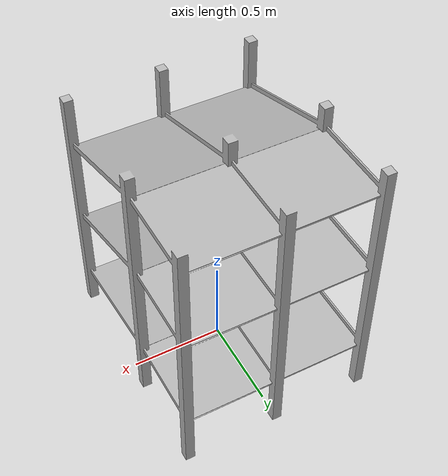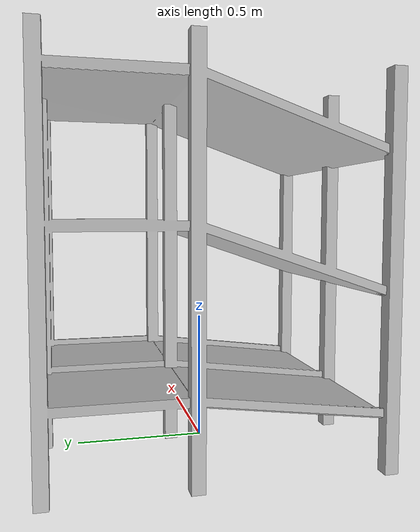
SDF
<?xml version="1.0"?>
<sdf version="1.4">

  <model name="Container Racks 2x3">

    <static>true</static>

    <link name="link">

      <pose>0 0 0 0 0 0</pose>

      <collision name="racks_collision">
        <geometry>
          <mesh>
            <uri>model://Container_Rack_2x3/meshes/Container_Rack_2x3.dae</uri>
          </mesh>
        </geometry>
      </collision>

      <visual name="racks_visual">
        <geometry>
          <mesh>
            <uri>model://Container_Rack_2x3/meshes/Container_Rack_2x3.dae</uri>
          </mesh>
        </geometry>

        <material>
          <script>
            <uri>model://Container_Rack_2x3/materials/scripts</uri>
            <uri>model://Container_Rack_2x3/materials/textures</uri>
</script>
        </material>
      </visual>

    </link>

  </model>
</sdf>
